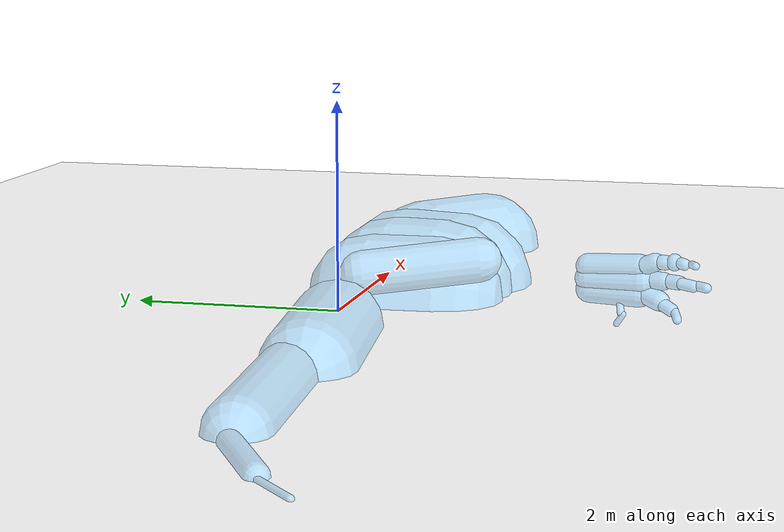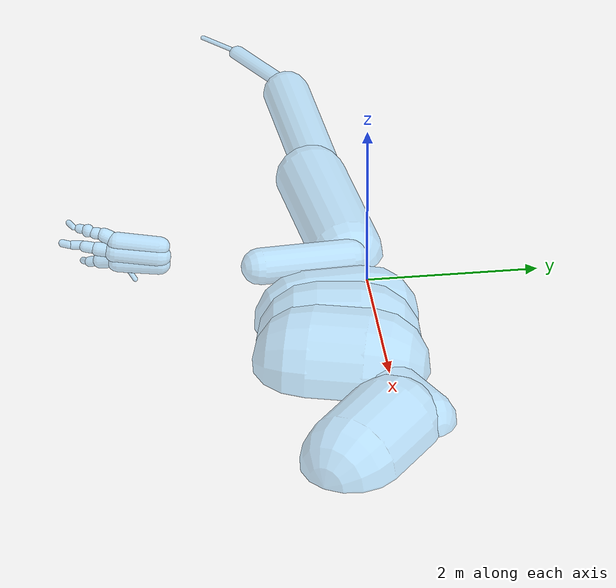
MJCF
<mujoco model="stan_t_rex">
  <compiler angle="radian"/>

  <option timestep="0.004"/>

  <size nkey="2"/>

  <visual>
    <global azimuth="120" elevation="-20"/>
    <headlight ambient="0.2 0.2 0.2" diffuse="0.8 0.8 0.8"/>
  </visual>

  <default>
    <default class="visual">
      <geom contype="0" conaffinity="0" group="1"/>
    </default>
    <default class="contact">
      <geom contype="0" condim="4" group="2" friction="3 0.1 0.1" rgba="0.5 0.8 1 0.5"/>
    </default>
  </default>

  <asset>
    <texture type="2d" colorspace="auto" name="groundplane" builtin="checker" rgb1="1 1 1" rgb2="0.85 0.85 0.85" width="300" height="300"/>
    <material name="groundplane" texture="groundplane" texuniform="true" texrepeat="5 5"/>
  </asset>

  <worldbody>
    <geom name="floor" size="0 0 0.01" type="plane" conaffinity="0" condim="4" priority="1" friction="3 0.1 0.1" material="groundplane"/>
    <light name="key" pos="0 -6 8" dir="0 0.514496 -0.857493" type="directional" diffuse="0.85 0.85 0.8" specular="0.2 0.2 0.2"/>
    <body name="link_vertebrae_sacral">
      <inertial pos="1.21312 -0.313018 0.00137338" quat="0.988175 -0.0195015 0.00215386 -0.152072" mass="2184" diaginertia="460.17 1802.03 1827.63"/>
      <joint name="joint_world_to_sacrum" type="free"/>
      <geom name="link_vertebrae_sacral_collision_00" class="contact" size="0.607781 0.3527" pos="0.826185 -0.459992 6.27511e-05" quat="-0.486442 0.513027 -0.486449 -0.513367" type="capsule"/>
      <geom name="link_vertebrae_sacral_collision_01" class="contact" size="0.702694 0.251643" pos="1.27986 -0.486766 5.65748e-05" quat="-0.0437575 0.0506774 0.705078 -0.705962" type="capsule"/>
      <geom name="link_vertebrae_sacral_collision_02" class="contact" size="0.696878 0.328837" pos="1.78274 -0.526325 0.00104907" quat="-0.0910751 0.0921909 0.700758 -0.70153" type="capsule"/>
      <site name="imu" pos="0 0 0"/>
      <camera name="track" pos="0 -18 6" quat="0.812163 0.58343 0 0" mode="trackcom"/>
      <body name="link_femur_right" pos="0.0171967 -0.22077 0.249246" quat="7.47632e-08 -0.990268 -0.139173 1.05073e-08">
        <inertial pos="0.0595957 0.564937 -0.17089" quat="0.838519 -2.85352e-07 9.32863e-07 -0.544872" mass="390.746" diaginertia="19.3481 65.7975 68.5767"/>
        <joint name="joint_hip_adduction_right" pos="0 0 0" axis="1 0 0" limited="true" range="-0.785398 0.261799" armature="890.405" damping="356162" frictionloss="0.01"/>
        <joint name="joint_femur_right" pos="0 0 0" axis="0 0 1" limited="true" range="-1.5708 1.5708" armature="1137.25" damping="454899" frictionloss="0.01"/>
        <geom name="link_femur_right_collision_00" class="contact" size="0.214518 0.556795" pos="0.0318889 0.567064 -0.180948" quat="0.647922 -0.721799 -0.190279 -0.151645" type="capsule"/>
        <body name="link_tibia_right" pos="0.000265156 1.06577 -0.145267" quat="0.956305 0 0 0.292372">
          <inertial pos="0.0732767 0.619265 -0.0703217" quat="-0.611794 -3.00534e-07 -9.90547e-07 0.791017" mass="219.728" diaginertia="9.16453 22.7758 27.968"/>
          <joint name="joint_tibia_right" pos="0 0 0" axis="0 0 1" limited="true" range="-0.593412 1.5708" armature="533.425" damping="213370" frictionloss="0.01"/>
          <body name="link_tarsometatarsus_right" pos="0.000432153 1.11552 -0.0558443">
            <inertial pos="0.018665 0.355162 -0.0207543" quat="-0.385315 -0.459876 0.590881 0.539357" mass="76.2595" diaginertia="1.67526 2.91473 3.33952"/>
            <joint name="joint_tarsometatarsus_right" pos="0 0 0" axis="0 0 1" limited="true" range="-2.0944 0.349066" armature="118.913" damping="47565.3" frictionloss="0.01"/>
            <geom name="link_tarsometatarsus_right_collision_00" class="contact" size="0.112571 0.252384" pos="-0.0161042 0.361946 -0.139057" quat="0.517162 0.527844 0.432903 -0.516255" type="capsule"/>
            <geom name="link_tarsometatarsus_right_collision_01" class="contact" size="0.136283 0.253035" pos="0.00340553 0.369177 -0.0176562" quat="0.453305 0.472842 0.501255 -0.565402" type="capsule"/>
            <geom name="link_tarsometatarsus_right_collision_02" class="contact" size="0.124018 0.244687" pos="0.00688365 0.356091 0.0990183" quat="0.473401 0.516055 0.482461 -0.526127" type="capsule"/>
            <geom name="link_tarsometatarsus_right_collision_03" class="contact" size="0.033343 0.0475833" pos="-0.0570813 0.448724 0.226724" quat="0.931862 -0.193392 -0.142741 0.27177" type="capsule"/>
            <geom name="link_tarsometatarsus_right_collision_04" class="contact" size="0.028362 0.0588139" pos="-0.0688996 0.452255 0.330666" quat="-0.29516 0.874924 0.374866 0.0828511" type="capsule"/>
            <body name="link_toe_02_a_right" pos="0.00909185 0.643101 0.0893701" quat="0.979827 0.162113 -0.0735904 0.0907904">
              <inertial pos="0.0147853 0.0814085 -0.00967986" quat="-0.502477 0.154823 0.0878952 0.846062" mass="8.56807" diaginertia="0.0502756 0.06677 0.0681447"/>
              <joint name="joint_toe_02_a_right" pos="0 0 0" axis="0 0 1" stiffness="27426.6" limited="true" range="-0.785398 0.785398" armature="5.48532" damping="2194.13" frictionloss="0.01"/>
              <geom name="link_toe_02_a_right_collision_00" class="contact" size="0.0916302 0.0778342" pos="0.011275 0.0992318 -0.00715853" quat="0.71617 0.693162 0.0376701 -0.0721629" type="capsule"/>
              <body name="link_toe_02_b_right" pos="1.56462e-07 0.158649 -5.84114e-08">
                <inertial pos="-0.0154471 0.152657 0.00165576" quat="-0.116208 0.603882 0.783924 -0.0853566" mass="5.20653" diaginertia="0.0182187 0.0424637 0.0449215"/>
                <joint name="joint_toe_02_b_right" pos="0 0 0" axis="0 0 1" stiffness="9681.5" limited="true" range="-0.785398 0.785398" armature="1.9363" damping="774.52" frictionloss="0.01"/>
                <geom name="link_toe_02_b_right_collision_00" class="contact" size="0.060618 0.0612124" pos="0.00205091 0.112831 0.000565781" quat="0.660804 0.713359 0.163511 -0.166495" type="capsule"/>
                <geom name="link_toe_02_b_right_collision_01" class="contact" size="0.0394 0.0614701" pos="-0.0345079 0.259887 0.0187485" quat="0.241155 -0.476906 0.362256 0.763659" type="capsule"/>
              </body>
            </body>
            <body name="link_toe_03_a_right" pos="0.0330297 0.610174 -0.0396302" quat="0.99981 -0.00872521 -0.000152299 0.0174517">
              <inertial pos="-0.00332758 0.204792 0.00372508" quat="0.023774 0.716701 0.696969 0.00286763" mass="10.1654" diaginertia="0.0446378 0.137133 0.147505"/>
              <joint name="joint_toe_03_a_right" pos="0 0 0" axis="0 0 1" stiffness="42294.3" limited="true" range="-0.785398 0.785398" armature="8.45887" damping="3383.55" frictionloss="0.01"/>
              <geom name="link_toe_03_a_right_collision_00" class="contact" size="0.0817621 0.0702842" pos="-0.00245971 0.154413 0.00269454" quat="0.696881 0.693408 0.119705 -0.138611" type="capsule"/>
              <geom name="link_toe_03_a_right_collision_01" class="contact" size="0.0655983 0.0472511" pos="-0.00749199 0.33635 -0.000398682" quat="0.697732 0.705282 0.111209 -0.0581309" type="capsule"/>
              <body name="link_toe_03_c_right" pos="-0.0129442 0.388236 0.00259236" quat="0.993173 0.0270484 -0.00692299 0.113257">
                <inertial pos="0.0156839 0.136671 -0.00317707" quat="-0.00985439 0.814915 0.57948 -0.00434973" mass="2.89596" diaginertia="0.0053898 0.0214789 0.0229493"/>
                <joint name="joint_toe_03_c_right" pos="0 0 0" axis="0 0 1" stiffness="5105.69" limited="true" range="-0.785398 0.785398" armature="1.02114" damping="408.456" frictionloss="0.01"/>
                <geom name="link_toe_03_c_right_collision_00" class="contact" size="0.053458 0.0570303" pos="0.0011071 0.0886454 0.00120698" quat="0.717543 -0.681897 0.0482289 -0.133501" type="capsule"/>
                <geom name="link_toe_03_c_right_collision_01" class="contact" size="0.0441679 0.0458561" pos="0.0371651 0.226117 -0.00066893" quat="0.513463 -0.510102 0.487692 0.488168" type="capsule"/>
              </body>
            </body>
            <body name="link_toe_04_a_right" pos="-0.00682644 0.58667 -0.14669" quat="0.983495 -0.166741 0.0544253 0.0444264">
              <inertial pos="0.0172329 0.198665 0.0143072" quat="-0.532788 -0.459698 0.383531 0.598096" mass="8.46925" diaginertia="0.0314272 0.11588 0.1185"/>
              <joint name="joint_toe_04_a_right" pos="0 0 0" axis="0 0 1" stiffness="30748.5" limited="true" range="-0.785398 0.785398" armature="6.14971" damping="2459.88" frictionloss="0.01"/>
              <geom name="link_toe_04_a_right_collision_00" class="contact" size="0.0837599 0.0551393" pos="0.00630333 0.136273 -0.000923693" quat="0.710788 0.681034 0.0678441 -0.162392" type="capsule"/>
              <geom name="link_toe_04_a_right_collision_01" class="contact" size="0.0674528 0.0181647" pos="0.0111032 0.280209 0.0182228" quat="0.577992 0.814605 -0.0123019 -0.0468171" type="capsule"/>
              <geom name="link_toe_04_a_right_collision_02" class="contact" size="0.0691817 0.00890138" pos="0.00730526 0.387184 0.038952" quat="0.981858 0.0987401 -0.158512 0.0328412" type="capsule"/>
              <body name="link_toe_04_d_right" pos="0.000835589 0.409246 0.0445163" quat="0.986364 0.138325 -0.045053 0.0769553">
                <inertial pos="-0.00827861 0.124301 0.00350416" quat="0.0185577 0.620445 0.783781 0.0197853" mass="1.81881" diaginertia="0.00300785 0.0115257 0.0126079"/>
                <joint name="joint_toe_04_d_right" pos="0 0 0" axis="0 0 1" stiffness="2797.89" limited="true" range="-0.785398 0.785398" armature="0.559578" damping="223.831" frictionloss="0.01"/>
                <geom name="link_toe_04_d_right_collision_00" class="contact" size="0.0527143 0.0178278" pos="-0.00181929 0.0723804 0.00486225" quat="0.637231 0.764672 -0.0526461 0.0802587" type="capsule"/>
                <geom name="link_toe_04_d_right_collision_01" class="contact" size="0.0342527 0.0538313" pos="-0.0174964 0.204079 0.00129659" quat="-0.197502 0.551691 -0.465742 -0.66311" type="capsule"/>
              </body>
            </body>
          </body>
        </body>
      </body>
      <body name="link_vertebra_cervical_09" pos="2.23474 -0.171243 5.89388e-08" quat="0.564721 0.425547 0.564721 -0.425548">
        <inertial pos="0.000404814 0.295613 -0.140102" quat="-0.606042 -0.366589 0.60749 0.359558" mass="141.182" diaginertia="2.64417 5.5484 5.87559"/>
        <joint name="joint_vertebra_cervical_09" pos="0 0 0" axis="1 0 0" stiffness="9.01886e+06" limited="true" range="-0.349066 0.349066" armature="1803.77" damping="721509" frictionloss="0.01"/>
        <geom name="link_vertebra_cervical_09_collision_00" class="contact" size="0.362431 0.591284" pos="0.0125853 0.282472 -0.101" quat="0.467766 -0.563783 0.523579 0.434982" type="capsule"/>
        <body name="link_vertebra_cervical_03" pos="8.44487e-09 0.585291 -0.119872" quat="0.999048 -0.0436194 0 0">
          <inertial pos="6.8316e-05 0.157548 -0.074258" quat="-0.681527 -0.188565 0.681721 0.187671" mass="45.0396" diaginertia="0.581883 0.727497 0.766012"/>
          <joint name="joint_vertebra_cervical_03" pos="0 0 0" axis="1 0 0" stiffness="6.52556e+06" limited="true" range="-0.349066 0.349066" armature="1305.11" damping="522045" frictionloss="0.01"/>
          <body name="link_atlas_axis" pos="-2.21099e-08 0.239541 0.0793894" quat="0.870356 0.492424 0 0">
            <inertial pos="-7.23943e-06 -0.011386 -0.119745" quat="0.635544 0.309975 -0.309975 0.635543" mass="12.0989" diaginertia="0.0891542 0.114052 0.134444"/>
            <joint name="joint_atlas_axis" pos="0 0 0" axis="1 0 0" stiffness="5.01721e+06" limited="true" range="-0.349066 0.349066" armature="1003.44" damping="401377" frictionloss="0.01"/>
            <body name="link_cranium" pos="-1.77311e-09 0.130331 1.05438e-07" quat="0.999391 -0.0348995 0 0">
              <inertial pos="-0.00530691 0.54022 0.429507" quat="-0.671953 0.2165 0.21209 0.67574" mass="947.701" diaginertia="113.079 169.726 171.188"/>
              <joint name="joint_cranium" pos="0 0 0" axis="0 1 0" stiffness="2.35477e+06" limited="true" range="-0.349066 0.349066" armature="470.953" damping="188381" frictionloss="0.01"/>
              <geom name="link_cranium_collision_00" class="contact" size="0.581243 0.434752" pos="-0.00669254 0.489722 0.189838" quat="0.517918 -0.482728 0.480062 0.517952" type="capsule"/>
            </body>
          </body>
        </body>
      </body>
      <body name="link_vertebra_caudal_02" pos="-0.842928 -0.213934 -4.40416e-08" quat="0.477714 0.521334 -0.477714 0.521334">
        <inertial pos="-6.1334e-05 0.0857775 -0.150383" quat="-0.477715 0.521333 -0.521333 -0.477715" mass="47.6395" diaginertia="0.789287 1.3243 1.64256"/>
        <joint name="joint_vertebra_caudal_02" pos="0 0 0" axis="1 0 0" stiffness="3.19165e+06" limited="true" range="-0.349066 0.349066" armature="638.33" damping="255332" frictionloss="0.01"/>
        <body name="link_vertebra_caudal_03" pos="-1.39533e-08 0.177778 -9.2178e-09">
          <inertial pos="0.000484851 0.579897 -0.119633" quat="-0.4919 -0.507277 0.492689 0.5079" mass="233.674" diaginertia="5.81126 32.6392 34.4168"/>
          <joint name="joint_vertebra_caudal_03" pos="0 0 0" axis="0 0 1" stiffness="2.82112e+06" limited="true" range="-0.349066 0.349066" armature="564.225" damping="225690" frictionloss="0.01"/>
          <geom name="link_vertebra_caudal_03_collision_00" class="contact" size="0.429234 0.845942" pos="-3.40917e-05 0.423596 0.00279877" quat="0.720179 -0.693788 0.000267646 0.000582087" type="capsule"/>
          <body name="link_vertebra_caudal_10" pos="-1.04746e-07 1.26695 -0.0303436" quat="0.999048 -0.0436194 0 0">
            <inertial pos="-0.000177817 0.0858667 -0.0870004" quat="-0.5 0.5 0.5 0.5" mass="20.0175" diaginertia="0.201548 0.278517 0.359171"/>
            <joint name="joint_vertebra_caudal_10" pos="0 0 0" axis="1 0 0" stiffness="1.14944e+06" limited="true" range="-0.349066 0.349066" armature="229.888" damping="91955.2" frictionloss="0.01"/>
            <body name="link_vertebra_caudal_11" pos="-1.6323e-08 0.175526 -2.75228e-09" quat="0.999048 -0.0436194 0 0">
              <inertial pos="0.00216054 0.747812 -0.0211552" quat="0.460077 0.536065 -0.464886 -0.533708" mass="91.5619" diaginertia="0.882879 29.8704 30.2443"/>
              <joint name="joint_vertebra_caudal_11" pos="0 0 0" axis="0 0 1" stiffness="975321" limited="true" range="-0.349066 0.349066" armature="195.064" damping="78025.7" frictionloss="0.01"/>
              <geom name="link_vertebra_caudal_11_collision_00" class="contact" size="0.285022 0.902846" pos="-0.000148045 0.955592 0.130624" quat="-0.00119283 0.000841709 0.644031 0.764998" type="capsule"/>
              <body name="link_vertebra_caudal_24" pos="-1.49557e-08 2.05929 0.329455" quat="0.978148 0.207912 0 0">
                <inertial pos="0.00247878 0.0723531 -0.029799" quat="0.116705 0.69741 -0.116705 -0.697409" mass="1.91906" diaginertia="0.00489249 0.00508351 0.00816952"/>
                <joint name="joint_vertebra_caudal_24" pos="0 0 0" axis="1 0 0" stiffness="77003.9" limited="true" range="-0.349066 0.349066" armature="15.4008" damping="6160.31" frictionloss="0.01"/>
                <body name="link_vertebra_caudal_25" pos="-1.70112e-08 0.133804 -1.1872e-07" quat="0.999048 0.0436194 0 0">
                  <inertial pos="0.00194095 0.359868 1.57603e-05" quat="0.470027 0.528903 -0.469462 -0.528149" mass="8.36592" diaginertia="0.0157867 0.470057 0.480892"/>
                  <joint name="joint_vertebra_caudal_25" pos="0 0 0" axis="0 0 1" stiffness="59733.4" limited="true" range="-0.349066 0.349066" armature="11.9467" damping="4778.67" frictionloss="0.01"/>
                  <geom name="link_vertebra_caudal_25_collision_00" class="contact" size="0.101909 0.446119" pos="-0.00109035 0.362029 0.0465009" quat="0.0171839 0.0182138 0.746072 -0.665395" type="capsule"/>
                  <body name="link_vertebra_caudal_34" pos="-1.83006e-07 0.869153 0.094321" quat="0.987688 0.156434 0 0">
                    <inertial pos="0.00108175 0.168414 -0.0121471" quat="0.497445 0.503302 -0.496737 -0.502481" mass="1.00482" diaginertia="0.000557174 0.0159434 0.0163717"/>
                    <joint name="joint_vertebra_caudal_34" pos="0 0 0" axis="0 0 1" stiffness="2863.82" limited="true" range="-0.349066 0.349066" armature="0.572765" damping="229.106" frictionloss="0.01"/>
                    <geom name="link_vertebra_caudal_34_collision_00" class="contact" size="0.0293967 0.263672" pos="0.000700735 0.263582 -0.000583491" quat="-0.00770373 0.00665055 0.69672 0.717271" type="capsule"/>
                  </body>
                </body>
              </body>
            </body>
          </body>
        </body>
      </body>
      <body name="link_femur_left" pos="0.0171967 -0.22077 -0.249247" quat="7.47632e-08 0.990268 0.139173 1.05073e-08">
        <inertial pos="0.0596058 0.564222 0.170268" quat="0.836483 -2.38356e-07 1.00732e-06 -0.547992" mass="388.14" diaginertia="19.0769 65.3888 68.1471"/>
        <joint name="joint_hip_adduction_left" pos="0 0 0" axis="1 0 0" limited="true" range="-0.261799 0.785398" armature="891.869" damping="356748" frictionloss="0.01"/>
        <joint name="joint_femur_left" pos="0 0 0" axis="0 0 1" limited="true" range="-1.5708 1.5708" armature="1138.25" damping="455301" frictionloss="0.01"/>
        <geom name="link_femur_left_collision_00" class="contact" size="0.216146 0.551932" pos="0.0312246 0.567355 0.181651" quat="0.183523 -0.14621 -0.64875 -0.723924" type="capsule"/>
        <body name="link_tibia_left" pos="-0.000128338 1.06577 0.145267" quat="0.956305 0 0 0.292372">
          <inertial pos="0.0740429 0.619739 0.0704671" quat="-0.583882 -3.40656e-07 -1.10293e-06 0.811839" mass="220.549" diaginertia="9.23066 22.8197 28.0312"/>
          <joint name="joint_tibia_left" pos="0 0 0" axis="0 0 1" limited="true" range="-0.593412 1.5708" armature="534.49" damping="213796" frictionloss="0.01"/>
          <body name="link_tarsometatarsus_left" pos="0.000315699 1.11551 0.0558451">
            <inertial pos="0.0187975 0.354963 0.0203979" quat="-0.446636 -0.370996 0.546053 0.603908" mass="76.5164" diaginertia="1.68523 2.92343 3.34657"/>
            <joint name="joint_tarsometatarsus_left" pos="0 0 0" axis="0 0 1" limited="true" range="-2.0944 0.349066" armature="118.918" damping="47567.1" frictionloss="0.01"/>
            <geom name="link_tarsometatarsus_left_collision_00" class="contact" size="0.110625 0.250847" pos="-0.0148433 0.362735 0.137706" quat="-0.431114 -0.519509 -0.515735 0.527511" type="capsule"/>
            <geom name="link_tarsometatarsus_left_collision_01" class="contact" size="0.131134 0.254915" pos="0.00345368 0.369164 0.0151472" quat="0.502761 0.563407 0.452173 -0.474704" type="capsule"/>
            <geom name="link_tarsometatarsus_left_collision_02" class="contact" size="0.124779 0.23586" pos="0.005896 0.355716 -0.0977376" quat="0.491455 0.530619 0.467278 -0.508493" type="capsule"/>
            <geom name="link_tarsometatarsus_left_collision_03" class="contact" size="0.0333044 0.0471361" pos="-0.0569281 0.449083 -0.226616" quat="0.933168 0.196617 0.136981 0.267909" type="capsule"/>
            <geom name="link_tarsometatarsus_left_collision_04" class="contact" size="0.0284881 0.0582309" pos="-0.0690341 0.451865 -0.330832" quat="0.865531 -0.295559 0.0885537 0.394536" type="capsule"/>
            <body name="link_toe_02_a_left" pos="0.00909191 0.643099 -0.0893701" quat="0.977292 -0.14327 -0.105687 0.114911">
              <inertial pos="0.0179428 0.0812521 0.00368567" quat="-0.481471 0.00129007 -0.178031 0.858189" mass="8.45436" diaginertia="0.049145 0.065468 0.0665067"/>
              <joint name="joint_toe_02_a_left" pos="0 0 0" axis="0 0 1" stiffness="26687.3" limited="true" range="-0.785398 0.785398" armature="5.33745" damping="2134.98" frictionloss="0.01"/>
              <geom name="link_toe_02_a_left_collision_00" class="contact" size="0.0926855 0.0712897" pos="0.0125636 0.0992225 0.000794455" quat="0.699504 0.705702 0.0636107 -0.0929112" type="capsule"/>
              <body name="link_toe_02_b_left" pos="-1.49012e-07 0.158649 -1.49012e-08">
                <inertial pos="-0.0151147 0.153802 0.00385999" quat="0.790195 -0.0274518 0.026541 -0.611665" mass="5.20389" diaginertia="0.0181067 0.0427964 0.0452571"/>
                <joint name="joint_toe_02_b_left" pos="0 0 0" axis="0 0 1" stiffness="9104.29" limited="true" range="-0.785398 0.785398" armature="1.82086" damping="728.343" frictionloss="0.01"/>
                <geom name="link_toe_02_b_left_collision_00" class="contact" size="0.0606563 0.0609832" pos="0.00185785 0.11253 -0.00176594" quat="0.735246 0.675359 -0.0347252 0.0458043" type="capsule"/>
                <geom name="link_toe_02_b_left_collision_01" class="contact" size="0.0395126 0.0614435" pos="-0.0385099 0.260673 -0.00565499" quat="-0.316586 0.669155 -0.301533 -0.600902" type="capsule"/>
              </body>
            </body>
            <body name="link_toe_03_a_left" pos="0.0330298 0.610172 0.0396302" quat="0.99981 0.00872521 0.000152299 0.0174517">
              <inertial pos="-0.00324581 0.205244 -0.00397383" quat="-0.696252 0.00274455 -0.023596 0.717404" mass="10.1098" diaginertia="0.0441945 0.135686 0.145984"/>
              <joint name="joint_toe_03_a_left" pos="0 0 0" axis="0 0 1" stiffness="42293.2" limited="true" range="-0.785398 0.785398" armature="8.45864" damping="3383.45" frictionloss="0.01"/>
              <geom name="link_toe_03_a_left_collision_00" class="contact" size="0.0777788 0.0839381" pos="-0.00184666 0.154414 -0.00415609" quat="0.690265 -0.700206 -0.117632 -0.139317" type="capsule"/>
              <geom name="link_toe_03_a_left_collision_01" class="contact" size="0.0656656 0.0501767" pos="-0.00705487 0.336675 -8.24709e-05" quat="0.691744 -0.708824 -0.121068 -0.0663347" type="capsule"/>
              <body name="link_toe_03_c_left" pos="-0.0129442 0.388236 -0.00259243" quat="0.993212 -0.0250731 -0.0104172 0.113106">
                <inertial pos="0.0154624 0.136706 0.00246322" quat="-0.580883 0.0125559 0.00359346 0.813882" mass="2.9075" diaginertia="0.00544402 0.0215669 0.0230565"/>
                <joint name="joint_toe_03_c_left" pos="0 0 0" axis="0 0 1" stiffness="5045.6" limited="true" range="-0.785398 0.785398" armature="1.00912" damping="403.648" frictionloss="0.01"/>
                <geom name="link_toe_03_c_left_collision_00" class="contact" size="0.0544494 0.0528316" pos="0.00128035 0.0884543 -0.00130005" quat="0.722662 0.675789 -0.0453896 -0.13787" type="capsule"/>
                <geom name="link_toe_03_c_left_collision_01" class="contact" size="0.044418 0.045789" pos="0.0368475 0.226319 -0.00277294" quat="0.478871 -0.488837 0.521182 0.509991" type="capsule"/>
              </body>
            </body>
            <body name="link_toe_04_a_left" pos="-0.00682626 0.586669 0.14669" quat="0.982202 0.159508 0.072951 0.0671939">
              <inertial pos="0.0201382 0.198532 -0.00924809" quat="-0.371381 -0.581757 0.655792 0.305896" mass="8.52725" diaginertia="0.031828 0.11709 0.119646"/>
              <joint name="joint_toe_04_a_left" pos="0 0 0" axis="0 0 1" stiffness="33541.5" limited="true" range="-0.785398 0.785398" armature="6.7083" damping="2683.32" frictionloss="0.01"/>
              <geom name="link_toe_04_a_left_collision_00" class="contact" size="0.084975 0.0533822" pos="0.00510873 0.137548 0.00230563" quat="0.696679 -0.653443 -0.167901 -0.243843" type="capsule"/>
              <geom name="link_toe_04_a_left_collision_01" class="contact" size="0.0679391 0.0165386" pos="0.0154783 0.280475 -0.0141809" quat="0.559795 -0.81299 -0.0611023 -0.148134" type="capsule"/>
              <geom name="link_toe_04_a_left_collision_02" class="contact" size="0.0691673 0.00937221" pos="0.0187165 0.386204 -0.034854" quat="0.994448 -0.102169 0.0248119 -0.00447599" type="capsule"/>
              <body name="link_toe_04_d_left" pos="0.0128645 0.409425 -0.0418466" quat="0.98807 -0.14755 -0.0154793 0.041313">
                <inertial pos="-0.0074166 0.125302 -0.00464719" quat="0.784057 0.0256511 -0.0348076 -0.619181" mass="1.80836" diaginertia="0.00298593 0.0114079 0.0124884"/>
                <joint name="joint_toe_04_d_left" pos="0 0 0" axis="0 0 1" stiffness="2995.38" limited="true" range="-0.785398 0.785398" armature="0.599077" damping="239.631" frictionloss="0.01"/>
                <geom name="link_toe_04_d_left_collision_00" class="contact" size="0.0509856 0.0202958" pos="-0.00186066 0.0719497 -0.00471937" quat="0.763031 0.645671 0.0125345 0.0271136" type="capsule"/>
                <geom name="link_toe_04_d_left_collision_01" class="contact" size="0.0341297 0.0538311" pos="-0.0171702 0.204132 -0.00352327" quat="0.487745 -0.70713 0.149404 0.489643" type="capsule"/>
              </body>
            </body>
          </body>
        </body>
      </body>
    </body>
  </worldbody>

  <tendon>
    <fixed name="tail_sagittal">
      <joint joint="joint_vertebra_caudal_02" coef="1"/>
      <joint joint="joint_vertebra_caudal_10" coef="0.75"/>
      <joint joint="joint_vertebra_caudal_24" coef="0.5"/>
    </fixed>
    <fixed name="tail_mediolateral">
      <joint joint="joint_vertebra_caudal_03" coef="1"/>
      <joint joint="joint_vertebra_caudal_11" coef="0.75"/>
      <joint joint="joint_vertebra_caudal_25" coef="0.5"/>
      <joint joint="joint_vertebra_caudal_34" coef="0.25"/>
    </fixed>
  </tendon>

  <actuator>
    <general name="actuator_hip_adduction_right" joint="joint_hip_adduction_right" ctrllimited="true" ctrlrange="-0.785398 0.261799" biastype="affine" gainprm="890405" biasprm="0 -890405"/>
    <general name="actuator_hip_adduction_left" joint="joint_hip_adduction_left" ctrllimited="true" ctrlrange="-0.261799 0.785398" biastype="affine" gainprm="891869" biasprm="0 -891869"/>
    <general name="actuator_hip_flexion_right" joint="joint_femur_right" ctrllimited="true" ctrlrange="-1.5708 1.5708" biastype="affine" gainprm="1.13725e+06" biasprm="0 -1.13725e+06"/>
    <general name="actuator_hip_flexion_left" joint="joint_femur_left" ctrllimited="true" ctrlrange="-1.5708 1.5708" biastype="affine" gainprm="1.13825e+06" biasprm="0 -1.13825e+06"/>
    <general name="actuator_knee_right" joint="joint_tibia_right" ctrllimited="true" ctrlrange="-0.593412 1.5708" biastype="affine" gainprm="533425" biasprm="0 -533425"/>
    <general name="actuator_knee_left" joint="joint_tibia_left" ctrllimited="true" ctrlrange="-0.593412 1.5708" biastype="affine" gainprm="534490" biasprm="0 -534490"/>
    <general name="actuator_ankle_right" joint="joint_tarsometatarsus_right" ctrllimited="true" ctrlrange="-2.0944 0.349066" biastype="affine" gainprm="118913" biasprm="0 -118913"/>
    <general name="actuator_ankle_left" joint="joint_tarsometatarsus_left" ctrllimited="true" ctrlrange="-2.0944 0.349066" biastype="affine" gainprm="118918" biasprm="0 -118918"/>
    <general name="actuator_tail_sagittal" tendon="tail_sagittal" ctrllimited="true" ctrlrange="-0.785398 0.785398" biastype="affine" gainprm="818447" biasprm="0 -818447"/>
    <general name="actuator_tail_mediolateral" tendon="tail_mediolateral" ctrllimited="true" ctrlrange="-0.872665 0.872665" biastype="affine" gainprm="716639" biasprm="0 -716639"/>
  </actuator>

  <sensor>
    <gyro site="imu" name="gyro"/>
    <accelerometer site="imu" name="accelerometer"/>
    <framezaxis objtype="site" objname="imu" name="upvector"/>
    <framelinvel objtype="site" objname="imu" name="global_linvel"/>
    <frameangvel objtype="site" objname="imu" name="global_angvel"/>
  </sensor>

  <keyframe>
    <key name="zero_upright" qpos="0 0 1.5 1 0 0 0 0 0 0 0 0 0 0 0 0 0 0 0 0 0 0 0 0 0 0 0 0 0 0 0 0 0 0 0 0 0 0"/>
    <key name="side_lying_zero" qpos="0 0 3 0.707107 0.707107 0 0 0 0 0 0 0 0 0 0 0 0 0 0 0 0 0 0 0 0 0 0 0 0 0 0 0 0 0 0 0 0 0"/>
  </keyframe>
</mujoco>
